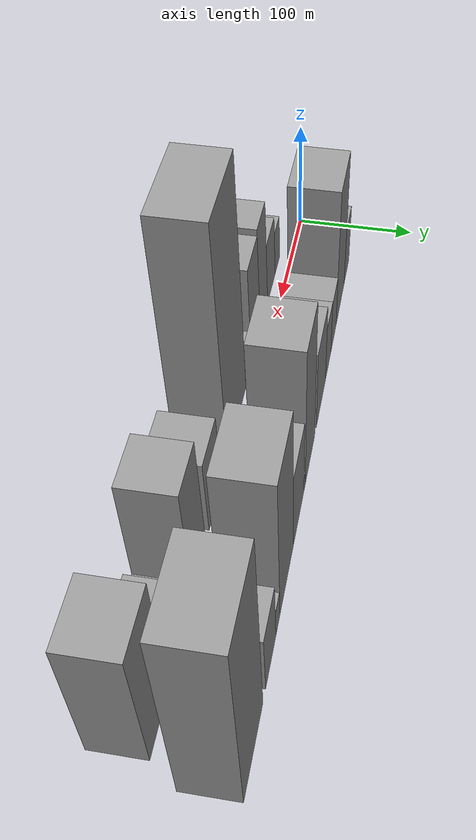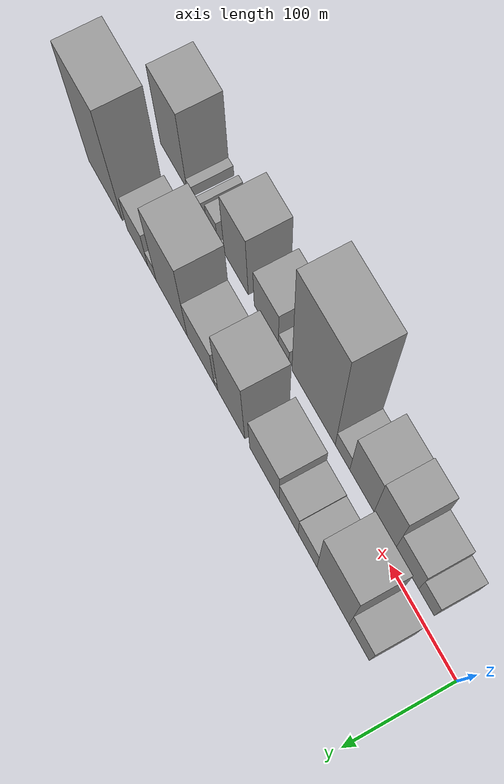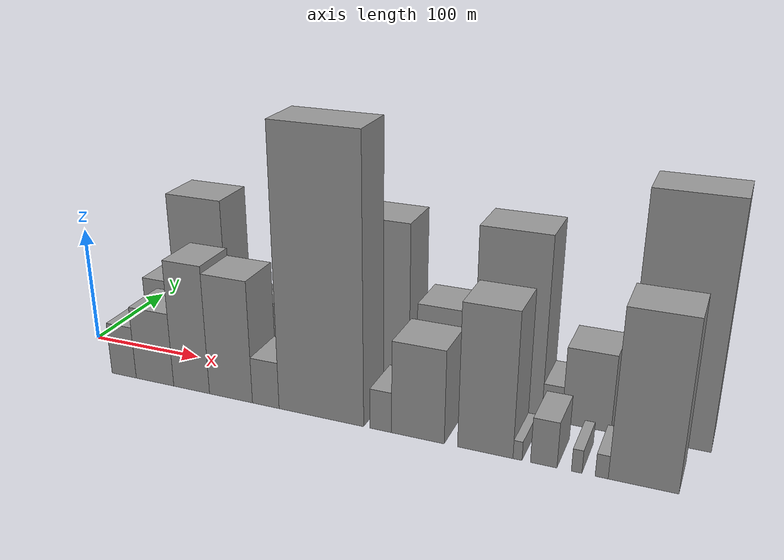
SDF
<sdf version="1.6">
 <world name="default">
  <scene>
   <sky><clouds><speed>12</speed></clouds></sky>
   <ambient>0.4 0.4 0.4 1</ambient>
   <background>0.7 0.7 0.7 1</background>
   <shadows>1</shadows>
  </scene>
  <gravity>0 0 -9.8066</gravity>
  <magnetic_field>6e-06 2.3e-05 -4.2e-05</magnetic_field>
  <physics default="0" name="default_physics" type="ode">
   <ode>
    <solver>
     <type>quick</type>
     <iters>10</iters>
     <sor>1.0</sor>
     <use_dynamic_moi_rescaling>0</use_dynamic_moi_rescaling>
    </solver>
    <constraints>
     <cfm>0</cfm>
     <erp>0.2</erp>
     <contact_max_correcting_vel>100</contact_max_correcting_vel>
     <contact_surface_layer>0.001</contact_surface_layer>
    </constraints>
   </ode>
   <max_step_size>0.004</max_step_size>
   <real_time_factor>1</real_time_factor>
   <real_time_update_rate>250</real_time_update_rate>
  </physics>
  <light name="sun" type="directional">
   <pose>0 0 10 0 0 0</pose>
   <diffuse>0.8 0.8 0.8 1</diffuse>
   <specular>0.2 0.2 0.2 1</specular>
   <attenuation>
    <range>1000</range>
    <constant>0.9</constant>
    <linear>0.01</linear>
    <quadratic>0.001</quadratic>
   </attenuation>
   <direction>-0.5 0.1 -0.9</direction>
  </light>
  <model name="building_1">
   <static>1</static>
   <pose>60.4509 30.0000 0 0.000000 0.000000 1.570796</pose>
   <link name="link">
    <pose>0 0 30.00 0 0 0</pose>
    <collision name="collision"><geometry><box><size>40.0000 30.9018 60.0000</size></box></geometry></collision>
    <visual name="visual">
     <cast_shadows>0</cast_shadows>
     <geometry><box><size>40.0000 30.9018 60.0000</size></box></geometry>
     <material>
      <script>
       <uri>model://grey_wall/materials/scripts</uri>
       <uri>model://grey_wall/materials/textures</uri>
       <name>vrc/grey_wall</name>
      </script>
     </material>
    </visual>
   </link>
  </model>
  <model name="building_2">
   <static>1</static>
   <pose>100.6354 30.0000 0 0.000000 0.000000 1.570796</pose>
   <link name="link">
    <pose>0 0 69.00 0 0 0</pose>
    <collision name="collision"><geometry><box><size>40.0000 49.4672 138.0000</size></box></geometry></collision>
    <visual name="visual">
     <cast_shadows>0</cast_shadows>
     <geometry><box><size>40.0000 49.4672 138.0000</size></box></geometry>
     <material>
      <script>
       <uri>model://grey_wall/materials/scripts</uri>
       <uri>model://grey_wall/materials/textures</uri>
       <name>vrc/grey_wall</name>
      </script>
     </material>
    </visual>
   </link>
  </model>
  <model name="building_3">
   <static>1</static>
   <pose>140.2721 30.0000 0 0.000000 0.000000 1.570796</pose>
   <link name="link">
    <pose>0 0 27.00 0 0 0</pose>
    <collision name="collision"><geometry><box><size>40.0000 29.8062 54.0000</size></box></geometry></collision>
    <visual name="visual">
     <cast_shadows>0</cast_shadows>
     <geometry><box><size>40.0000 29.8062 54.0000</size></box></geometry>
     <material>
      <script>
       <uri>model://grey_wall/materials/scripts</uri>
       <uri>model://grey_wall/materials/textures</uri>
       <name>vrc/grey_wall</name>
      </script>
     </material>
    </visual>
   </link>
  </model>
  <model name="building_4">
   <static>1</static>
   <pose>170.2187 30.0000 0 0.000000 0.000000 1.570796</pose>
   <link name="link">
    <pose>0 0 28.50 0 0 0</pose>
    <collision name="collision"><geometry><box><size>40.0000 30.0870 57.0000</size></box></geometry></collision>
    <visual name="visual">
     <cast_shadows>0</cast_shadows>
     <geometry><box><size>40.0000 30.0870 57.0000</size></box></geometry>
     <material>
      <script>
       <uri>model://grey_wall/materials/scripts</uri>
       <uri>model://grey_wall/materials/textures</uri>
       <name>vrc/grey_wall</name>
      </script>
     </material>
    </visual>
   </link>
  </model>
  <model name="building_5">
   <static>1</static>
   <pose>209.2248 30.0000 0 0.000000 0.000000 1.570796</pose>
   <link name="link">
    <pose>0 0 40.50 0 0 0</pose>
    <collision name="collision"><geometry><box><size>40.0000 47.9252 81.0000</size></box></geometry></collision>
    <visual name="visual">
     <cast_shadows>0</cast_shadows>
     <geometry><box><size>40.0000 47.9252 81.0000</size></box></geometry>
     <material>
      <script>
       <uri>model://grey_wall/materials/scripts</uri>
       <uri>model://grey_wall/materials/textures</uri>
       <name>vrc/grey_wall</name>
      </script>
     </material>
    </visual>
   </link>
  </model>
  <model name="building_6">
   <static>1</static>
   <pose>263.5453 30.0000 0 0.000000 0.000000 1.570796</pose>
   <link name="link">
    <pose>0 0 70.50 0 0 0</pose>
    <collision name="collision"><geometry><box><size>40.0000 44.7156 141.0000</size></box></geometry></collision>
    <visual name="visual">
     <cast_shadows>0</cast_shadows>
     <geometry><box><size>40.0000 44.7156 141.0000</size></box></geometry>
     <material>
      <script>
       <uri>model://grey_wall/materials/scripts</uri>
       <uri>model://grey_wall/materials/textures</uri>
       <name>vrc/grey_wall</name>
      </script>
     </material>
    </visual>
   </link>
  </model>
  <model name="building_7">
   <static>1</static>
   <pose>289.0126 30.0000 0 0.000000 0.000000 1.570796</pose>
   <link name="link">
    <pose>0 0 7.50 0 0 0</pose>
    <collision name="collision"><geometry><box><size>40.0000 6.2190 15.0000</size></box></geometry></collision>
    <visual name="visual">
     <cast_shadows>0</cast_shadows>
     <geometry><box><size>40.0000 6.2190 15.0000</size></box></geometry>
     <material>
      <script>
       <uri>model://grey_wall/materials/scripts</uri>
       <uri>model://grey_wall/materials/textures</uri>
       <name>vrc/grey_wall</name>
      </script>
     </material>
    </visual>
   </link>
  </model>
  <model name="building_8">
   <static>1</static>
   <pose>315.0949 30.0000 0 0.000000 0.000000 1.570796</pose>
   <link name="link">
    <pose>0 0 39.00 0 0 0</pose>
    <collision name="collision"><geometry><box><size>40.0000 45.9457 78.0000</size></box></geometry></collision>
    <visual name="visual">
     <cast_shadows>0</cast_shadows>
     <geometry><box><size>40.0000 45.9457 78.0000</size></box></geometry>
     <material>
      <script>
       <uri>model://grey_wall/materials/scripts</uri>
       <uri>model://grey_wall/materials/textures</uri>
       <name>vrc/grey_wall</name>
      </script>
     </material>
    </visual>
   </link>
  </model>
  <model name="building_9">
   <static>1</static>
   <pose>365.0862 30.0000 0 0.000000 0.000000 1.570796</pose>
   <link name="link">
    <pose>0 0 73.50 0 0 0</pose>
    <collision name="collision"><geometry><box><size>40.0000 54.0369 147.0000</size></box></geometry></collision>
    <visual name="visual">
     <cast_shadows>0</cast_shadows>
     <geometry><box><size>40.0000 54.0369 147.0000</size></box></geometry>
     <material>
      <script>
       <uri>model://grey_wall/materials/scripts</uri>
       <uri>model://grey_wall/materials/textures</uri>
       <name>vrc/grey_wall</name>
      </script>
     </material>
    </visual>
   </link>
  </model>
  <model name="building_10">
   <static>1</static>
   <pose>399.7373 30.0000 0 0.000000 0.000000 1.570796</pose>
   <link name="link">
    <pose>0 0 15.00 0 0 0</pose>
    <collision name="collision"><geometry><box><size>40.0000 15.2653 30.0000</size></box></geometry></collision>
    <visual name="visual">
     <cast_shadows>0</cast_shadows>
     <geometry><box><size>40.0000 15.2653 30.0000</size></box></geometry>
     <material>
      <script>
       <uri>model://grey_wall/materials/scripts</uri>
       <uri>model://grey_wall/materials/textures</uri>
       <name>vrc/grey_wall</name>
      </script>
     </material>
    </visual>
   </link>
  </model>
  <model name="building_11">
   <static>1</static>
   <pose>425.6151 30.0000 0 0.000000 0.000000 1.570796</pose>
   <link name="link">
    <pose>0 0 31.50 0 0 0</pose>
    <collision name="collision"><geometry><box><size>40.0000 36.4903 63.0000</size></box></geometry></collision>
    <visual name="visual">
     <cast_shadows>0</cast_shadows>
     <geometry><box><size>40.0000 36.4903 63.0000</size></box></geometry>
     <material>
      <script>
       <uri>model://grey_wall/materials/scripts</uri>
       <uri>model://grey_wall/materials/textures</uri>
       <name>vrc/grey_wall</name>
      </script>
     </material>
    </visual>
   </link>
  </model>
  <model name="building_12">
   <static>1</static>
   <pose>483.7335 30.0000 0 0.000000 0.000000 1.570796</pose>
   <link name="link">
    <pose>0 0 94.50 0 0 0</pose>
    <collision name="collision"><geometry><box><size>40.0000 61.7464 189.0000</size></box></geometry></collision>
    <visual name="visual">
     <cast_shadows>0</cast_shadows>
     <geometry><box><size>40.0000 61.7464 189.0000</size></box></geometry>
     <material>
      <script>
       <uri>model://grey_wall/materials/scripts</uri>
       <uri>model://grey_wall/materials/textures</uri>
       <name>vrc/grey_wall</name>
      </script>
     </material>
    </visual>
   </link>
  </model>
  <model name="building_13">
   <static>1</static>
   <pose>61.6590 -30.0000 0 0.000000 0.000000 1.570796</pose>
   <link name="link">
    <pose>0 0 22.50 0 0 0</pose>
    <collision name="collision"><geometry><box><size>40.0000 23.3180 45.0000</size></box></geometry></collision>
    <visual name="visual">
     <cast_shadows>0</cast_shadows>
     <geometry><box><size>40.0000 23.3180 45.0000</size></box></geometry>
     <material>
      <script>
       <uri>model://grey_wall/materials/scripts</uri>
       <uri>model://grey_wall/materials/textures</uri>
       <name>vrc/grey_wall</name>
      </script>
     </material>
    </visual>
   </link>
  </model>
  <model name="building_14">
   <static>1</static>
   <pose>90.9858 -30.0000 0 0.000000 0.000000 1.570796</pose>
   <link name="link">
    <pose>0 0 31.50 0 0 0</pose>
    <collision name="collision"><geometry><box><size>40.0000 35.3356 63.0000</size></box></geometry></collision>
    <visual name="visual">
     <cast_shadows>0</cast_shadows>
     <geometry><box><size>40.0000 35.3356 63.0000</size></box></geometry>
     <material>
      <script>
       <uri>model://grey_wall/materials/scripts</uri>
       <uri>model://grey_wall/materials/textures</uri>
       <name>vrc/grey_wall</name>
      </script>
     </material>
    </visual>
   </link>
  </model>
  <model name="building_15">
   <static>1</static>
   <pose>125.0163 -30.0000 0 0.000000 0.000000 1.570796</pose>
   <link name="link">
    <pose>0 0 54.00 0 0 0</pose>
    <collision name="collision"><geometry><box><size>40.0000 32.7255 108.0000</size></box></geometry></collision>
    <visual name="visual">
     <cast_shadows>0</cast_shadows>
     <geometry><box><size>40.0000 32.7255 108.0000</size></box></geometry>
     <material>
      <script>
       <uri>model://grey_wall/materials/scripts</uri>
       <uri>model://grey_wall/materials/textures</uri>
       <name>vrc/grey_wall</name>
      </script>
     </material>
    </visual>
   </link>
  </model>
  <model name="building_16">
   <static>1</static>
   <pose>160.4544 -30.0000 0 0.000000 0.000000 1.570796</pose>
   <link name="link">
    <pose>0 0 51.00 0 0 0</pose>
    <collision name="collision"><geometry><box><size>40.0000 38.1506 102.0000</size></box></geometry></collision>
    <visual name="visual">
     <cast_shadows>0</cast_shadows>
     <geometry><box><size>40.0000 38.1506 102.0000</size></box></geometry>
     <material>
      <script>
       <uri>model://grey_wall/materials/scripts</uri>
       <uri>model://grey_wall/materials/textures</uri>
       <name>vrc/grey_wall</name>
      </script>
     </material>
    </visual>
   </link>
  </model>
  <model name="building_17">
   <static>1</static>
   <pose>191.0245 -30.0000 0 0.000000 0.000000 1.570796</pose>
   <link name="link">
    <pose>0 0 19.50 0 0 0</pose>
    <collision name="collision"><geometry><box><size>40.0000 22.9897 39.0000</size></box></geometry></collision>
    <visual name="visual">
     <cast_shadows>0</cast_shadows>
     <geometry><box><size>40.0000 22.9897 39.0000</size></box></geometry>
     <material>
      <script>
       <uri>model://grey_wall/materials/scripts</uri>
       <uri>model://grey_wall/materials/textures</uri>
       <name>vrc/grey_wall</name>
      </script>
     </material>
    </visual>
   </link>
  </model>
  <model name="building_18">
   <static>1</static>
   <pose>237.5832 -30.0000 0 0.000000 0.000000 1.570796</pose>
   <link name="link">
    <pose>0 0 112.50 0 0 0</pose>
    <collision name="collision"><geometry><box><size>40.0000 70.1277 225.0000</size></box></geometry></collision>
    <visual name="visual">
     <cast_shadows>0</cast_shadows>
     <geometry><box><size>40.0000 70.1277 225.0000</size></box></geometry>
     <material>
      <script>
       <uri>model://grey_wall/materials/scripts</uri>
       <uri>model://grey_wall/materials/textures</uri>
       <name>vrc/grey_wall</name>
      </script>
     </material>
    </visual>
   </link>
  </model>
  <model name="building_19">
   <static>1</static>
   <pose>286.1950 -30.0000 0 0.000000 0.000000 1.570796</pose>
   <link name="link">
    <pose>0 0 16.50 0 0 0</pose>
    <collision name="collision"><geometry><box><size>40.0000 17.0960 33.0000</size></box></geometry></collision>
    <visual name="visual">
     <cast_shadows>0</cast_shadows>
     <geometry><box><size>40.0000 17.0960 33.0000</size></box></geometry>
     <material>
      <script>
       <uri>model://grey_wall/materials/scripts</uri>
       <uri>model://grey_wall/materials/textures</uri>
       <name>vrc/grey_wall</name>
      </script>
     </material>
    </visual>
   </link>
  </model>
  <model name="building_20">
   <static>1</static>
   <pose>315.1002 -30.0000 0 0.000000 0.000000 1.570796</pose>
   <link name="link">
    <pose>0 0 37.50 0 0 0</pose>
    <collision name="collision"><geometry><box><size>40.0000 40.7143 75.0000</size></box></geometry></collision>
    <visual name="visual">
     <cast_shadows>0</cast_shadows>
     <geometry><box><size>40.0000 40.7143 75.0000</size></box></geometry>
     <material>
      <script>
       <uri>model://grey_wall/materials/scripts</uri>
       <uri>model://grey_wall/materials/textures</uri>
       <name>vrc/grey_wall</name>
      </script>
     </material>
    </visual>
   </link>
  </model>
  <model name="building_21">
   <static>1</static>
   <pose>365.8696 -30.0000 0 0.000000 0.000000 1.570796</pose>
   <link name="link">
    <pose>0 0 57.00 0 0 0</pose>
    <collision name="collision"><geometry><box><size>40.0000 40.8246 114.0000</size></box></geometry></collision>
    <visual name="visual">
     <cast_shadows>0</cast_shadows>
     <geometry><box><size>40.0000 40.8246 114.0000</size></box></geometry>
     <material>
      <script>
       <uri>model://grey_wall/materials/scripts</uri>
       <uri>model://grey_wall/materials/textures</uri>
       <name>vrc/grey_wall</name>
      </script>
     </material>
    </visual>
   </link>
  </model>
  <model name="building_22">
   <static>1</static>
   <pose>389.5292 -30.0000 0 0.000000 0.000000 1.570796</pose>
   <link name="link">
    <pose>0 0 7.50 0 0 0</pose>
    <collision name="collision"><geometry><box><size>40.0000 6.4946 15.0000</size></box></geometry></collision>
    <visual name="visual">
     <cast_shadows>0</cast_shadows>
     <geometry><box><size>40.0000 6.4946 15.0000</size></box></geometry>
     <material>
      <script>
       <uri>model://grey_wall/materials/scripts</uri>
       <uri>model://grey_wall/materials/textures</uri>
       <name>vrc/grey_wall</name>
      </script>
     </material>
    </visual>
   </link>
  </model>
  <model name="building_23">
   <static>1</static>
   <pose>408.1531 -30.0000 0 0.000000 0.000000 1.570796</pose>
   <link name="link">
    <pose>0 0 18.00 0 0 0</pose>
    <collision name="collision"><geometry><box><size>40.0000 18.7534 36.0000</size></box></geometry></collision>
    <visual name="visual">
     <cast_shadows>0</cast_shadows>
     <geometry><box><size>40.0000 18.7534 36.0000</size></box></geometry>
     <material>
      <script>
       <uri>model://grey_wall/materials/scripts</uri>
       <uri>model://grey_wall/materials/textures</uri>
       <name>vrc/grey_wall</name>
      </script>
     </material>
    </visual>
   </link>
  </model>
  <model name="building_24">
   <static>1</static>
   <pose>431.2003 -30.0000 0 0.000000 0.000000 1.570796</pose>
   <link name="link">
    <pose>0 0 9.00 0 0 0</pose>
    <collision name="collision"><geometry><box><size>40.0000 7.3409 18.0000</size></box></geometry></collision>
    <visual name="visual">
     <cast_shadows>0</cast_shadows>
     <geometry><box><size>40.0000 7.3409 18.0000</size></box></geometry>
     <material>
      <script>
       <uri>model://grey_wall/materials/scripts</uri>
       <uri>model://grey_wall/materials/textures</uri>
       <name>vrc/grey_wall</name>
      </script>
     </material>
    </visual>
   </link>
  </model>
  <model name="building_25">
   <static>1</static>
   <pose>448.3053 -30.0000 0 0.000000 0.000000 1.570796</pose>
   <link name="link">
    <pose>0 0 9.00 0 0 0</pose>
    <collision name="collision"><geometry><box><size>40.0000 8.8690 18.0000</size></box></geometry></collision>
    <visual name="visual">
     <cast_shadows>0</cast_shadows>
     <geometry><box><size>40.0000 8.8690 18.0000</size></box></geometry>
     <material>
      <script>
       <uri>model://grey_wall/materials/scripts</uri>
       <uri>model://grey_wall/materials/textures</uri>
       <name>vrc/grey_wall</name>
      </script>
     </material>
    </visual>
   </link>
  </model>
  <model name="building_26">
   <static>1</static>
   <pose>476.1390 -30.0000 0 0.000000 0.000000 1.570796</pose>
   <link name="link">
    <pose>0 0 64.50 0 0 0</pose>
    <collision name="collision"><geometry><box><size>40.0000 46.7985 129.0000</size></box></geometry></collision>
    <visual name="visual">
     <cast_shadows>0</cast_shadows>
     <geometry><box><size>40.0000 46.7985 129.0000</size></box></geometry>
     <material>
      <script>
       <uri>model://grey_wall/materials/scripts</uri>
       <uri>model://grey_wall/materials/textures</uri>
       <name>vrc/grey_wall</name>
      </script>
     </material>
    </visual>
   </link>
  </model>
 </world>
</sdf>
